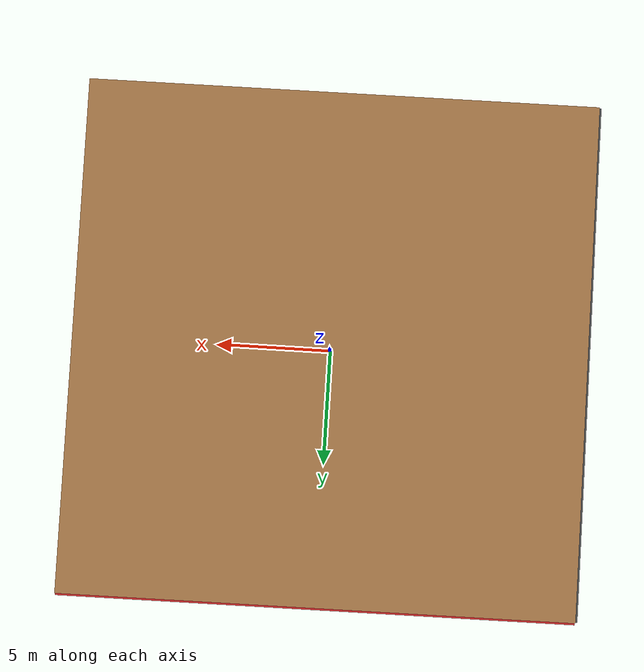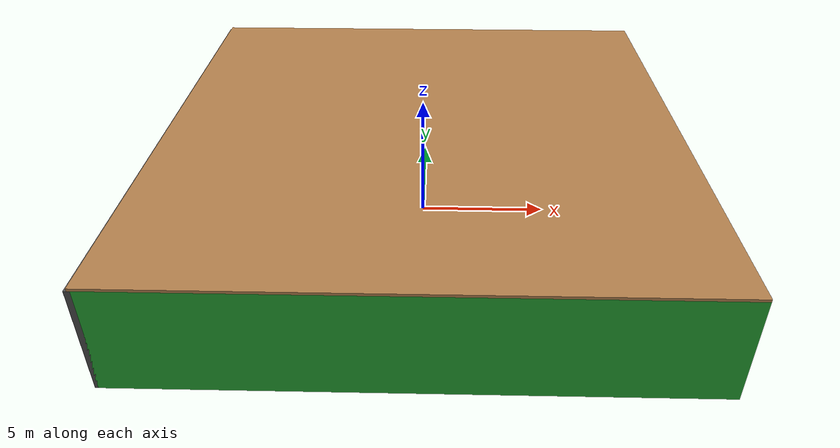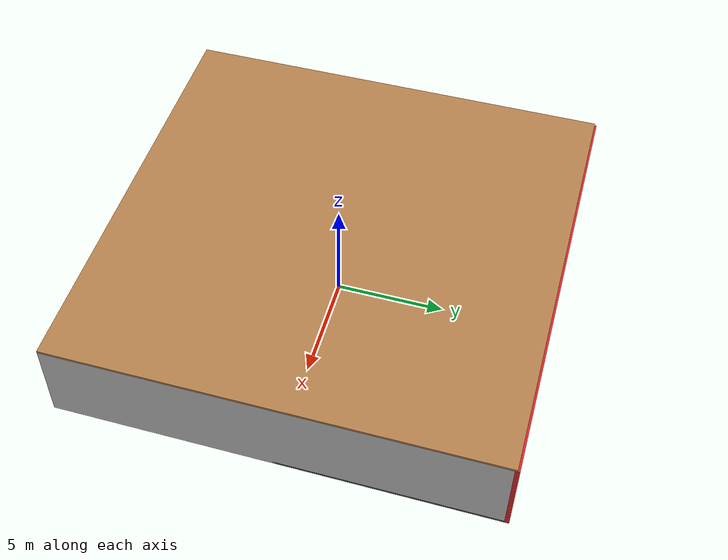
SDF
<sdf version="1.4">
 <world name="default">
  <physics type="ode">
   <max_step_size>0.001</max_step_size>
   <real_time_factor>1</real_time_factor>
   <real_time_update_rate>1000</real_time_update_rate>
   <gravity>0 0 -9.8</gravity>
  </physics>
  <scene><ambient>0.4 0.4 0.4 1</ambient><background>0.7 0.7 0.7 1</background><shadows>1</shadows></scene>
  <model name="Surrounding">
   <static>1</static>
   <link name="Ceiling">
    <collision name="Ceiling_Collision"><geometry><box><size>20 20 0.1</size></box></geometry></collision>
    <visual name="Ceiling_Visual">
     <geometry><box><size>20 20 0.1</size></box></geometry>
     <material>
      <script><uri>file://media/materials/scripts/gazebo.material</uri><name>Gazebo/Wood</name></script>
     </material>
    </visual>
    <pose>0 0 4.05 0 0 0</pose>
   </link>
   <link name="Wall_South">
    <collision name="Wall_South_Collision">
     <geometry><box><size>20 0 4</size></box></geometry>
     <pose>0 0 2 0 -0 0</pose>
    </collision>
    <visual name="Wall_South_Visual">
     <pose>0 0 2 0 -0 0</pose>
     <geometry><box><size>20 0 4</size></box></geometry>
     <material>
      <script><uri>file://media/materials/scripts/gazebo.material</uri><name>Gazebo/GreenGlow</name></script>
     </material>
    </visual>
    <velocity_decay><linear>0</linear><angular>0</angular></velocity_decay>
    <pose>0 -10 0 0 -0 0</pose>
   </link>
   <link name="Wall_East">
    <collision name="Wall_21_Collision">
     <geometry><box><size>20 0 4</size></box></geometry>
     <pose>0 0 2 0 -0 0</pose>
    </collision>
    <visual name="Wall_21_Visual">
     <pose>0 0 2 0 -0 0</pose>
     <geometry><box><size>20 0 4</size></box></geometry>
     <material>
      <script><uri>file://media/materials/scripts/gazebo.material</uri><name>Gazebo/LightOff</name></script>
     </material>
    </visual>
    <velocity_decay><linear>0</linear><angular>0</angular></velocity_decay>
    <pose>10 0 0 0 -0 1.5708</pose>
   </link>
   <link name="Wall_North">
    <collision name="Wall_22_Collision">
     <geometry><box><size>20 0.2 4</size></box></geometry>
     <pose>0 0 2 0 -0 0</pose>
    </collision>
    <visual name="Wall_22_Visual">
     <pose>0 0 2 0 -0 0</pose>
     <geometry><box><size>20 0.2 4</size></box></geometry>
     <material>
      <script><uri>file://media/materials/scripts/gazebo.material</uri><name>Gazebo/Red</name></script>
     </material>
    </visual>
    <velocity_decay><linear>0</linear><angular>0</angular></velocity_decay>
    <pose>0 10 0 0 -0 0</pose>
   </link>
   <link name="Wall_West">
    <collision name="Wall_23_Collision">
     <geometry><box><size>20 0.2 4</size></box></geometry>
     <pose>0 0 2 0 -0 0</pose>
    </collision>
    <visual name="Wall_23_Visual">
     <pose>0 0 2 0 -0 0</pose>
     <geometry><box><size>20 0.2 4</size></box></geometry>
     <material>
      <script><uri>file://media/materials/scripts/gazebo.material</uri><name>Gazebo/Road</name></script>
     </material>
    </visual>
    <velocity_decay><linear>0</linear><angular>0</angular></velocity_decay>
    <pose>-10 0 0 0 0 -1.5708</pose>
   </link>
   <link name="Ground_link">
    <collision name="collision">
     <pose>0 0 .05 0 -0 0</pose>
     <geometry><box><size>20 20 0.1</size></box></geometry>
    </collision>
    <visual name="visual">
     <pose>0 0 .05 0 -0 0</pose>
     <geometry><box><size>20 20 0.1</size></box></geometry>
     <material>
      <script><uri>file://media/materials/scripts/gazebo.material</uri><name>Gazebo/Road</name></script>
     </material>
    </visual>
   </link>
   <static>1</static>
  </model>
  <spherical_coordinates>
   <surface_model>EARTH_WGS84</surface_model>
   <latitude_deg>0</latitude_deg>
   <longitude_deg>0</longitude_deg>
   <elevation>0</elevation>
   <heading_deg>0</heading_deg>
  </spherical_coordinates>
  <light name="lightball_0" type="diffuse">
   <diffuse>0.8 0.8 0.8 1</diffuse>
   <specular>0.2 0.2 0.2 1</specular>
   <attenuation>
    <range>100</range>
    <constant>0.7</constant>
    <linear>0.01</linear>
    <quadratic>0.001</quadratic>
   </attenuation>
   <direction>-0.5 0.1 -0.9</direction>
   <pose>-0.0404384396299 -5.89088212525 1.8213992363 0 0 0</pose>
  </light>
  <light name="lightball_1" type="diffuse">
   <diffuse>0.8 0.8 0.8 1</diffuse>
   <specular>0.2 0.2 0.2 1</specular>
   <attenuation>
    <range>100</range>
    <constant>0.7</constant>
    <linear>0.01</linear>
    <quadratic>0.001</quadratic>
   </attenuation>
   <direction>-0.5 0.1 -0.9</direction>
   <pose>4.52217456511 8.74564664388 1.81835035819 0 0 0</pose>
  </light>
  <light name="lightball_2" type="diffuse">
   <diffuse>0.8 0.8 0.8 1</diffuse>
   <specular>0.2 0.2 0.2 1</specular>
   <attenuation>
    <range>100</range>
    <constant>0.7</constant>
    <linear>0.01</linear>
    <quadratic>0.001</quadratic>
   </attenuation>
   <direction>-0.5 0.1 -0.9</direction>
   <pose>-2.70885621829 -9.17910588429 1.97555600133 0 0 0</pose>
  </light>
  <light name="lightball_3" type="diffuse">
   <diffuse>0.8 0.8 0.8 1</diffuse>
   <specular>0.2 0.2 0.2 1</specular>
   <attenuation>
    <range>100</range>
    <constant>0.7</constant>
    <linear>0.01</linear>
    <quadratic>0.001</quadratic>
   </attenuation>
   <direction>-0.5 0.1 -0.9</direction>
   <pose>-2.70003678893 8.60683618014 1.68865475518 0 0 0</pose>
  </light>
  <light name="lightball_4" type="diffuse">
   <diffuse>0.8 0.8 0.8 1</diffuse>
   <specular>0.2 0.2 0.2 1</specular>
   <attenuation>
    <range>100</range>
    <constant>0.7</constant>
    <linear>0.01</linear>
    <quadratic>0.001</quadratic>
   </attenuation>
   <direction>-0.5 0.1 -0.9</direction>
   <pose>-5.667270013 -4.85236767516 0.938968607392 0 0 0</pose>
  </light>
  <light name="lightball_5" type="diffuse">
   <diffuse>0.8 0.8 0.8 1</diffuse>
   <specular>0.2 0.2 0.2 1</specular>
   <attenuation>
    <range>100</range>
    <constant>0.7</constant>
    <linear>0.01</linear>
    <quadratic>0.001</quadratic>
   </attenuation>
   <direction>-0.5 0.1 -0.9</direction>
   <pose>-9.31088769168 -5.17934367369 2.03750715219 0 0 0</pose>
  </light>
  <include>
   <uri>model://robocup_3Dsim_goal</uri>
   <pose>-6.65739740054 2.04668644301 0 0 0 0.223697258886</pose>
  </include>
  <include>
   <uri>model://robocup_3Dsim_goal</uri>
   <pose>-0.436510274592 -1.26929767312 0 0 0 1.9506247401</pose>
  </include>
  <include>
   <uri>model://construction_cone</uri>
   <pose>-2.59438743873 6.91903849314 0 0 0 2.03514879853</pose>
  </include>
  <include>
   <uri>model://construction_cone</uri>
   <pose>0.379426822644 3.88819948188 0 0 0 0.582005137222</pose>
  </include>
  <include><uri>model://table</uri><pose>8.53479701554 -2.36160136477 0 0 0 1.56031572766</pose></include>
 </world>
</sdf>

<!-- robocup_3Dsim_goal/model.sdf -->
<sdf version="1.5">
  <model name="robocup_3d_goal">
    <static>true</static>
    <link name="left_post">
      <pose>0 1.05 0.45 0 0 0</pose>
      <collision name="collision">
        <geometry>
          <cylinder>
            <radius>0.05</radius>
            <length>0.9</length>
          </cylinder>
        </geometry>
      </collision>
      <visual name="visual">
        <geometry>
          <cylinder>
            <radius>0.05</radius>
            <length>0.9</length>
          </cylinder>
        </geometry>
        <material>
          <script>
            <uri>file://media/materials/scripts/gazebo.material</uri>
            <name>Gazebo/ZincYellow</name>
          </script>
        </material>
      </visual>
    </link>
    <link name="left_support_horiz_lower">
      <pose>0.30 1.05 0.01 0 0 0</pose>
      <collision name="collision">
        <geometry>
          <box>
            <size>0.50 0.02 0.02</size>
          </box>
        </geometry>
      </collision>
      <visual name="visual">
        <geometry>
          <box>
            <size>0.50 0.02 0.02</size>
          </box>
        </geometry>
        <material>
          <script>
            <uri>file://media/materials/scripts/gazebo.material</uri>
            <name>Gazebo/White</name>
          </script>
        </material>
      </visual>
    </link>
    <link name="left_support_horiz_upper">
      <pose>0.30 1.05 0.79 0 0 0</pose>
      <collision name="collision">
        <geometry>
          <box>
            <size>0.50 0.02 0.02</size>
          </box>
        </geometry>
      </collision>
      <visual name="visual">
        <geometry>
          <box>
            <size>0.50 0.02 0.02</size>
          </box>
        </geometry>
        <material>
          <script>
            <uri>file://media/materials/scripts/gazebo.material</uri>
            <name>Gazebo/White</name>
          </script>
        </material>
      </visual>
    </link>
    <link name="left_support_vertical">
      <pose>0.56 1.05 0.4 0 1.5708 0</pose>
      <collision name="collision">
        <geometry>
          <box>
            <size>0.80 0.02 0.02</size>
          </box>
        </geometry>
      </collision>
      <visual name="visual">
        <geometry>
          <box>
            <size>0.80 0.02 0.02</size>
          </box>
        </geometry>
        <material>
          <script>
            <uri>file://media/materials/scripts/gazebo.material</uri>
            <name>Gazebo/White</name>
          </script>
        </material>
      </visual>
    </link>
    <link name="right_support_horiz_lower">
      <pose>0.30 -1.05 0.01 0 0 0</pose>
      <collision name="collision">
        <geometry>
          <box>
            <size>0.50 0.02 0.02</size>
          </box>
        </geometry>
      </collision>
      <visual name="visual">
        <geometry>
          <box>
            <size>0.50 0.02 0.02</size>
          </box>
        </geometry>
        <material>
          <script>
            <uri>file://media/materials/scripts/gazebo.material</uri>
            <name>Gazebo/White</name>
          </script>
        </material>
      </visual>
    </link>
    <link name="right_support_horiz_upper">
      <pose>0.30 -1.05 0.79 0 0 0</pose>
      <collision name="collision">
        <geometry>
          <box>
            <size>0.50 0.02 0.02</size>
          </box>
        </geometry>
      </collision>
      <visual name="visual">
        <geometry>
          <box>
            <size>0.50 0.02 0.02</size>
          </box>
        </geometry>
        <material>
          <script>
            <uri>file://media/materials/scripts/gazebo.material</uri>
            <name>Gazebo/White</name>
          </script>
        </material>
      </visual>
    </link>
    <link name="right_support_vertical">
      <pose>0.56 -1.05 0.4 0 1.5708 0</pose>
      <collision name="collision">
        <geometry>
          <box>
            <size>0.80 0.02 0.02</size>
          </box>
        </geometry>
      </collision>
      <visual name="visual">
        <geometry>
          <box>
            <size>0.80 0.02 0.02</size>
          </box>
        </geometry>
        <material>
          <script>
            <uri>file://media/materials/scripts/gazebo.material</uri>
            <name>Gazebo/White</name>
          </script>
        </material>
      </visual>
    </link>
    <link name="center_support_horiz_lower">
      <pose>0.56 0 0.01 0 1.5708 0</pose>
      <collision name="collision">
        <geometry>
          <box>
            <size>0.02 2.08 0.02</size>
          </box>
        </geometry>
      </collision>
      <visual name="visual">
        <geometry>
          <box>
            <size>0.02 2.08 0.02</size>
          </box>
        </geometry>
        <material>
          <script>
            <uri>file://media/materials/scripts/gazebo.material</uri>
            <name>Gazebo/White</name>
          </script>
        </material>
      </visual>
    </link>
    <link name="center_support_horiz_upper">
      <pose>0.56 0 0.79 0 1.5708 0</pose>
      <collision name="collision">
        <geometry>
          <box>
            <size>0.02 2.08 0.02</size>
          </box>
        </geometry>
      </collision>
      <visual name="visual">
        <geometry>
          <box>
            <size>0.02 2.08 0.02</size>
          </box>
        </geometry>
        <material>
          <script>
            <uri>file://media/materials/scripts/gazebo.material</uri>
            <name>Gazebo/White</name>
          </script>
        </material>
      </visual>
    </link>
    <link name="right_post">
      <pose>0 -1.05 0.45 0 0 0</pose>
      <collision name="collision">
        <geometry>
          <cylinder>
            <radius>0.05</radius>
            <length>0.9</length>
          </cylinder>
        </geometry>
      </collision>
      <visual name="visual">
        <geometry>
          <cylinder>
            <radius>0.05</radius>
            <length>0.9</length>
          </cylinder>
        </geometry>
        <material>
          <script>
            <uri>file://media/materials/scripts/gazebo.material</uri>
            <name>Gazebo/ZincYellow</name>
          </script>
        </material>
      </visual>
    </link>
    <link name="crossbar">
      <pose>0 0 0.85 1.57 1.57 0</pose>
      <collision name="collision">
        <geometry>
          <cylinder>
            <radius>0.05</radius>
            <length>2.0</length>
          </cylinder>
        </geometry>
      </collision>
      <visual name="visual">
        <geometry>
          <cylinder>
            <radius>0.05</radius>
            <length>2.0</length>
          </cylinder>
        </geometry>
        <material>
          <script>
            <uri>file://media/materials/scripts/gazebo.material</uri>
            <name>Gazebo/ZincYellow</name>
          </script>
        </material>
      </visual>
    </link>
    <link name="center_net">
      <pose>0.56 0 0.40 0 0 0</pose>
      <collision name="collision">
        <geometry>
          <box>
            <size>0.01 2.1 0.80</size>
          </box>
        </geometry>
      </collision>
      <visual name="visual">
        <geometry>
          <box>
            <size>0.01 2.1 0.80</size>
          </box>
        </geometry>
        <material>
          <script>
            <uri>model://../model_source/models/robocup09_spl_field/materials/scripts/</uri>
            <uri>model://../model_source/models/robocup09_spl_field/materials/textures/</uri>
            <name>RoboCup/Net</name>
          </script>
        </material>
      </visual>
    </link>
    <link name="left_net">
      <pose>0.30 1.05 0.40 0 0 0</pose>
      <collision name="collision">
        <geometry>
          <box>
            <size>0.50 0.01 0.76</size>
          </box>
        </geometry>
      </collision>
      <visual name="visual">
        <geometry>
          <box>
            <size>0.50 0.01 0.76</size>
          </box>
        </geometry>
        <material>
          <script>
            <uri>model://../model_source/models/robocup09_spl_field/materials/scripts/</uri>
            <uri>model://../model_source/models/robocup09_spl_field/materials/textures/</uri>
            <name>RoboCup/Net</name>
          </script>
        </material>
      </visual>
    </link>
    <link name="right_net">
      <pose>0.30 -1.05 0.40 0 0 0</pose>
      <collision name="collision">
        <geometry>
          <box>
            <size>0.50 0.01 0.76</size>
          </box>
        </geometry>
      </collision>
      <visual name="visual">
        <geometry>
          <box>
            <size>0.50 0.01 0.76</size>
          </box>
        </geometry>
        <material>
          <script>
            <uri>model://../model_source/models/robocup09_spl_field/materials/scripts/</uri>
            <uri>model://../model_source/models/robocup09_spl_field/materials/textures/</uri>
            <name>RoboCup/Net</name>
          </script>
        </material>
      </visual>
    </link>
  </model>
</sdf>

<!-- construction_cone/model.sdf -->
<sdf version="1.5">
  <model name="Construction Cone">
    <link name="link">
      <collision name="collision">
        <geometry>
          <mesh>
            <scale>10 10 10</scale>
            <uri>file://isr-testbed/construction_cone/meshes/construction_cone.dae</uri>
          </mesh>
        </geometry>
      </collision>
      <visual name="visual">
        <geometry>
          <mesh>
            <scale>10 10 10</scale>
            <uri>file://isr-testbed/construction_cone/meshes/construction_cone.dae</uri>
          </mesh>
        </geometry>
      </visual>
    </link>
  </model>
</sdf>

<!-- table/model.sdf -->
<sdf version="1.5">
  <model name="table">
    <static>true</static>
    <link name="link">
      <collision name="surface">
        <pose>0 0 1.0 0 0 0</pose>
        <geometry>
          <box>
            <size>1.5 0.8 0.03</size>
          </box>
        </geometry>
        <surface>
          <friction>
            <ode>
              <mu>0.6</mu>
              <mu2>0.6</mu2>
            </ode>
          </friction>
        </surface>
      </collision>
      <visual name="visual1">
        <pose>0 0 1.0 0 0 0</pose>
        <geometry>
          <box>
            <size>1.5 0.8 0.03</size>
          </box>
        </geometry>
        <material>
          <script>
            <uri>model://media/materials/scripts/gazebo.material</uri>
            <name>Gazebo/Wood</name>
          </script>
        </material>
      </visual>
      <collision name="front_left_leg">
        <pose>0.68 0.38 0.5 0 0 0</pose>
        <geometry>
          <cylinder>
            <radius>0.02</radius>
            <length>1.0</length>
          </cylinder>
        </geometry>
      </collision>
      <visual name="front_left_leg">
        <pose>0.68 0.38 0.5 0 0 0</pose>
        <geometry>
          <cylinder>
            <radius>0.02</radius>
            <length>1.0</length>
          </cylinder>
        </geometry>
        <material>
          <script>
            <uri>model://media/materials/scripts/gazebo.material</uri>
            <name>Gazebo/Grey</name>
          </script>
        </material>
      </visual>
      <collision name="front_right_leg">
        <pose>0.68 -0.38 0.5 0 0 0</pose>
        <geometry>
          <cylinder>
            <radius>0.02</radius>
            <length>1.0</length>
          </cylinder>
        </geometry>
      </collision>
      <visual name="front_right_leg">
        <pose>0.68 -0.38 0.5 0 0 0</pose>
        <geometry>
          <cylinder>
            <radius>0.02</radius>
            <length>1.0</length>
          </cylinder>
        </geometry>
        <material>
          <script>
            <uri>model://media/materials/scripts/gazebo.material</uri>
            <name>Gazebo/Grey</name>
          </script>
        </material>
      </visual>
      <collision name="back_right_leg">
        <pose>-0.68 -0.38 0.5 0 0 0</pose>
        <geometry>
          <cylinder>
            <radius>0.02</radius>
            <length>1.0</length>
          </cylinder>
        </geometry>
      </collision>
      <visual name="back_right_leg">
        <pose>-0.68 -0.38 0.5 0 0 0</pose>
        <geometry>
          <cylinder>
            <radius>0.02</radius>
            <length>1.0</length>
          </cylinder>
        </geometry>
        <material>
          <script>
            <uri>model://media/materials/scripts/gazebo.material</uri>
            <name>Gazebo/Grey</name>
          </script>
        </material>
      </visual>
      <collision name="back_left_leg">
        <pose>-0.68 0.38 0.5 0 0 0</pose>
        <geometry>
          <cylinder>
            <radius>0.02</radius>
            <length>1.0</length>
          </cylinder>
        </geometry>
      </collision>
      <visual name="back_left_leg">
        <pose>-0.68 0.38 0.5 0 0 0</pose>
        <geometry>
          <cylinder>
            <radius>0.02</radius>
            <length>1.0</length>
          </cylinder>
        </geometry>
        <material>
          <script>
            <uri>model://media/materials/scripts/gazebo.material</uri>
            <name>Gazebo/Grey</name>
          </script>
        </material>
      </visual>
    </link>
  </model>
</sdf>
